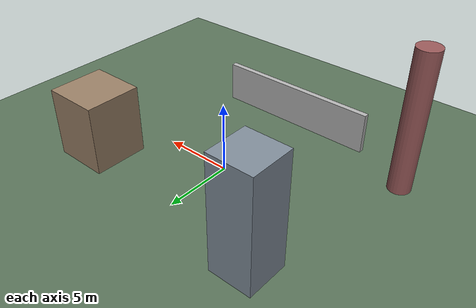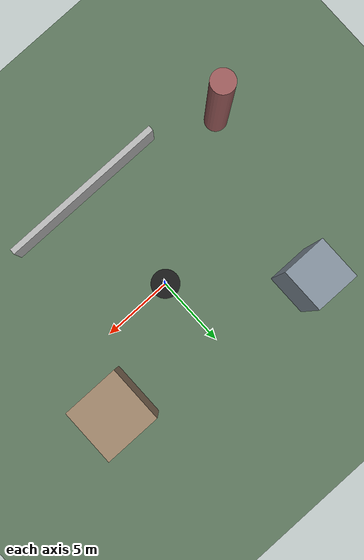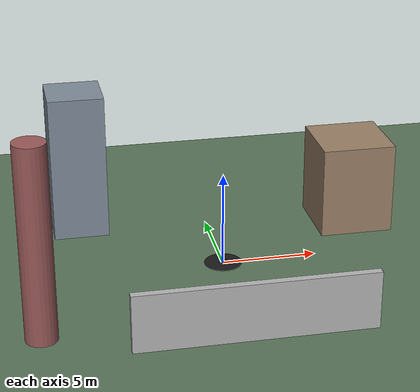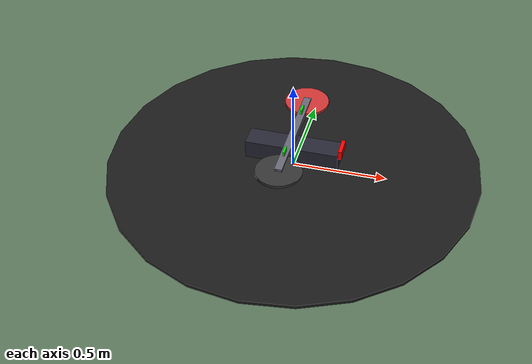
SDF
<?xml version="1.0" ?>
<sdf version="1.9">
  <world name="my_environment">

    <!-- ============ PHYSICS ============ -->
    <physics name="1ms" type="ignored">
      <max_step_size>0.001</max_step_size>
      <real_time_factor>1.0</real_time_factor>
    </physics>

    <!-- ============ WORLD ORIGIN (required for GPS / NavSat) ============ -->
    <!-- Lat/lon of the simulated world origin. Change to wherever you want the
         drone's takeoff point to be on Earth. -->
    <spherical_coordinates>
      <surface_model>EARTH_WGS84</surface_model>
      <world_frame_orientation>ENU</world_frame_orientation>
      <latitude_deg>47.397971</latitude_deg>
      <longitude_deg>8.546164</longitude_deg>
      <elevation>0</elevation>
      <heading_deg>0</heading_deg>
    </spherical_coordinates>

    <!-- ============ CORE SYSTEMS ============ -->
    <!-- These are listed explicitly so the world runs the same way regardless
         of your machine's default server config. -->
    <plugin filename="gz-sim-physics-system"
            name="gz::sim::systems::Physics"/>
    <plugin filename="gz-sim-user-commands-system"
            name="gz::sim::systems::UserCommands"/>
    <plugin filename="gz-sim-scene-broadcaster-system"
            name="gz::sim::systems::SceneBroadcaster"/>
    <plugin filename="gz-sim-sensors-system"
            name="gz::sim::systems::Sensors">
      <render_engine>ogre2</render_engine>
    </plugin>
    <plugin filename="gz-sim-imu-system"
            name="gz::sim::systems::Imu"/>
    <plugin filename="gz-sim-navsat-system"
            name="gz::sim::systems::NavSat"/>

    <!-- ============ SCENE / SKY ============ -->
    <scene>
      <ambient>0.4 0.4 0.4 1</ambient>
      <background>0.7 0.8 1.0 1</background>
      <sky></sky>
      <shadows>true</shadows>
    </scene>

    <light type="directional" name="sun">
      <cast_shadows>true</cast_shadows>
      <pose>0 0 10 0 0 0</pose>
      <diffuse>0.9 0.9 0.9 1</diffuse>
      <specular>0.3 0.3 0.3 1</specular>
      <attenuation>
        <range>1000</range>
        <constant>0.9</constant>
        <linear>0.01</linear>
        <quadratic>0.001</quadratic>
      </attenuation>
      <direction>-0.5 0.3 -0.9</direction>
    </light>

    <!-- ============ GROUND ============ -->
    <model name="ground_plane">
      <static>true</static>
      <link name="link">
        <collision name="collision">
          <geometry>
            <plane><normal>0 0 1</normal><size>200 200</size></plane>
          </geometry>
        </collision>
        <visual name="visual">
          <geometry>
            <plane><normal>0 0 1</normal><size>200 200</size></plane>
          </geometry>
          <material>
            <ambient>0.3 0.35 0.3 1</ambient>
            <diffuse>0.35 0.45 0.35 1</diffuse>
            <specular>0.1 0.1 0.1 1</specular>
          </material>
        </visual>
      </link>
    </model>

    <!-- ============ HELIPAD (takeoff marker under the drone) ============ -->
    <model name="helipad">
      <static>true</static>
      <pose>0 0 0.01 0 0 0</pose>
      <link name="link">
        <visual name="pad">
          <geometry><cylinder><radius>1.0</radius><length>0.02</length></cylinder></geometry>
          <material>
            <ambient>0.05 0.05 0.05 1</ambient>
            <diffuse>0.1 0.1 0.1 1</diffuse>
          </material>
        </visual>
        <collision name="pad_col">
          <geometry><cylinder><radius>1.0</radius><length>0.02</length></cylinder></geometry>
        </collision>
      </link>
    </model>

    <!-- ============ OBSTACLES ============ -->
    <!-- Two buildings, a wall and a tower. Copy/edit these blocks to design
         your own course. Everything is static so it won't move. -->
    <model name="building_a">
      <static>true</static>
      <pose>8 4 2.5 0 0 0</pose>
      <link name="link">
        <collision name="c"><geometry><box><size>4 4 5</size></box></geometry></collision>
        <visual name="v">
          <geometry><box><size>4 4 5</size></box></geometry>
          <material><ambient>0.5 0.4 0.35 1</ambient><diffuse>0.6 0.5 0.4 1</diffuse></material>
        </visual>
      </link>
    </model>

    <model name="building_b">
      <static>true</static>
      <pose>-7 6 4 0 0 0</pose>
      <link name="link">
        <collision name="c"><geometry><box><size>3 3 8</size></box></geometry></collision>
        <visual name="v">
          <geometry><box><size>3 3 8</size></box></geometry>
          <material><ambient>0.4 0.45 0.5 1</ambient><diffuse>0.5 0.55 0.6 1</diffuse></material>
        </visual>
      </link>
    </model>

    <model name="wall">
      <static>true</static>
      <pose>0 -8 1.5 0 0 0</pose>
      <link name="link">
        <collision name="c"><geometry><box><size>12 0.4 3</size></box></geometry></collision>
        <visual name="v">
          <geometry><box><size>12 0.4 3</size></box></geometry>
          <material><ambient>0.6 0.6 0.6 1</ambient><diffuse>0.7 0.7 0.7 1</diffuse></material>
        </visual>
      </link>
    </model>

    <model name="tower">
      <static>true</static>
      <pose>-10 -6 5 0 0 0</pose>
      <link name="link">
        <collision name="c"><geometry><cylinder><radius>0.8</radius><length>10</length></cylinder></geometry></collision>
        <visual name="v">
          <geometry><cylinder><radius>0.8</radius><length>10</length></cylinder></geometry>
          <material><ambient>0.5 0.3 0.3 1</ambient><diffuse>0.6 0.35 0.35 1</diffuse></material>
        </visual>
      </link>
    </model>

    <!-- ============ SPAWN THE DRONE ============ -->
    <!-- Found via GZ_SIM_RESOURCE_PATH (the models/ folder). Starts on the pad. -->
    <include>
      <uri>model://osprai</uri>
      <name>osprai</name>
      <pose>0 0 0.1 0 0 0</pose>
    </include>

  </world>
</sdf>

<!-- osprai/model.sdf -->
<sdf version="1.9">
  <model name="osprai">
    <pose>0 0 0 0 0 0</pose>

    <!-- ===================== FUSELAGE ===================== -->
    <link name="base_link">
      <inertial>
        <mass>1.0</mass>
        <inertia>
          <ixx>0.0020</ixx>
          <iyy>0.0217</iyy>
          <izz>0.0220</izz>
          <ixy>0</ixy>
          <ixz>0</ixz>
          <iyz>0</iyz>
        </inertia>
      </inertial>
      <visual name="body_visual">
        <geometry>
          <box>
            <size>0.50 0.12 0.10</size>
          </box>
        </geometry>
        <material>
          <ambient>0.1 0.1 0.12 1</ambient>
          <diffuse>0.15 0.15 0.2 1</diffuse>
        </material>
      </visual>
      <collision name="body_collision">
        <geometry><box><size>0.50 0.12 0.10</size></box></geometry>
      </collision>
      <!-- Spar drawn across the top so the geometry reads as an Osprey. -->
      <visual name="spar_visual">
        <pose>0 0 0.10 0 0 0</pose>
        <geometry>
          <box>
            <size>0.04 0.62 0.04</size>
          </box>
        </geometry>
        <material>
          <diffuse>0.4 0.4 0.45 1</diffuse>
        </material>
      </visual>
      <visual name="front_direction_marker">
        <pose>0.26 0 0.05 0 0 0</pose>
        <geometry>
          <box>
            <size>0.02 0.10 0.05</size>
          </box>
        </geometry>
        <material>
          <ambient>1 0 0 1</ambient>
          <diffuse>1 0 0 1</diffuse>
        </material>
      </visual>
      <sensor name="imu_sensor" type="imu">
        <always_on>1</always_on>
        <update_rate>250</update_rate>
        <topic>osprai/imu</topic>
        <imu>
          <orientation_reference_frame>
            <localization>CUSTOM</localization>
            <custom_rpy parent_frame="world">0 0 0</custom_rpy>
          </orientation_reference_frame>
        </imu>
      </sensor>
      <!-- ===== STEREO CAMERA PAIR (forward, baseline 0.12 m) ===== -->
      <!-- Both cameras are coplanar and parallel (face +X); the baseline is the
           Y separation (0.06 - (-0.06) = 0.12 m), which you'll need for the
           stereo disparity-to-depth math. -->
      <sensor name="camera_left" type="camera">
        <pose>0.26 0.06 0 0 0 0</pose>
        <always_on>1</always_on>
        <update_rate>30</update_rate>
        <topic>osprai/cameras/left</topic>
        <gz_frame_id>camera_left</gz_frame_id>
        <camera>
          <horizontal_fov>1.047</horizontal_fov>
          <image>
            <width>1280</width>
            <height>720</height>
          </image>
          <clip>
            <near>0.1</near>
            <far>300</far>
          </clip>
        </camera>
      </sensor>
      <sensor name="camera_right" type="camera">
        <pose>0.26 -0.06 0 0 0 0</pose>
        <always_on>1</always_on>
        <update_rate>30</update_rate>
        <topic>osprai/cameras/right</topic>
        <gz_frame_id>camera_right</gz_frame_id>
        <camera>
          <horizontal_fov>1.047</horizontal_fov>
          <image>
            <width>1280</width>
            <height>720</height>
          </image>
          <clip>
            <near>0.1</near>
            <far>300</far>
          </clip>
        </camera>
      </sensor>
      <!-- ===== 3D LIDAR (16-beam, 360 deg horizontal, mounted on top) ===== -->
      <sensor name="lidar" type="gpu_lidar">
        <pose>0 0 0.18 0 0 0</pose>
        <always_on>1</always_on>
        <update_rate>10</update_rate>
        <visualize>true</visualize>
        <topic>osprai/lidar</topic>
        <gz_frame_id>lidar</gz_frame_id>
        <lidar>
          <scan>
            <horizontal>
              <samples>360</samples>
              <resolution>1</resolution>
              <min_angle>-3.14159</min_angle>
              <max_angle>3.14159</max_angle>
            </horizontal>
            <vertical>
              <samples>16</samples>
              <resolution>1</resolution>
              <min_angle>-0.261799</min_angle>
              <max_angle>0.261799</max_angle>
            </vertical>
          </scan>
          <range>
            <min>0.2</min>
            <max>30.0</max>
            <resolution>0.01</resolution>
          </range>
          <noise>
            <type>gaussian</type>
            <mean>0.0</mean>
            <stddev>0.01</stddev>
          </noise>
        </lidar>
      </sensor>
      <sensor name="navsat" type="navsat">
        <always_on>1</always_on>
        <update_rate>5</update_rate>
        <topic>osprai/gps</topic>
        <gz_frame_id>navsat</gz_frame_id>
      </sensor>
    </link>

    <!-- ===================== LEFT ARM (+Y) ===================== -->
    <link name="arm_left">
      <pose>0 0.18 0.10 0 0 0</pose>
      <inertial>
        <mass>0.05</mass>
        <inertia>
          <ixx>0.0004</ixx>
          <iyy>0.00005</iyy>
          <izz>0.0004</izz>
          <ixy>0</ixy>
          <ixz>0</ixz>
          <iyz>0</iyz>
        </inertia>
      </inertial>
      <visual name="arm_left_visual">
        <geometry>
          <box>
            <size>0.03 0.26 0.03</size>
          </box>
        </geometry>
        <material>
          <diffuse>0.5 0.5 0.55 1</diffuse>
        </material>
      </visual>
      <visual name="arm_left_up_marker">
        <pose>0 0 0.025 0 0 0</pose>
        <geometry>
          <box>
            <size>0.01 0.05 0.04</size>
          </box>
        </geometry>
        <material>
          <ambient>0 1 0 1</ambient>
          <diffuse>0 1 0 1</diffuse>
        </material>
      </visual>
    </link>

    <!-- Tilt joint: rotates the whole arm about Y. Driven to a target angle. -->
    <joint name="tilt_left" type="revolute">
      <parent>base_link</parent>
      <child>arm_left</child>
      <axis>
        <xyz>0 1 0</xyz>
        <limit>
          <lower>-1.57</lower>
          <upper>1.57</upper>
          <velocity>10.0</velocity>
          <effort>1.0</effort>
        </limit>
        <dynamics>
          <damping>0.02</damping>
        </dynamics>
      </axis>
    </joint>

    <link name="rotor_left">
      <pose>0 0.30 0.10 0 0 0</pose>
      <inertial>
        <mass>0.05</mass>
        <inertia>
          <ixx>0.00018</ixx>
          <iyy>0.00018</iyy>
          <izz>0.00036</izz>
          <ixy>0</ixy>
          <ixz>0</ixz>
          <iyz>0</iyz>
        </inertia>
      </inertial>
      <visual name="rotor_left_visual">
        <geometry>
          <cylinder>
            <radius>0.12</radius>
            <length>0.015</length>
            </cylinder>
          </geometry>
        <material>
          <diffuse>0.8 0.2 0.2 1</diffuse>
        </material>
      </visual>
    </link>

    <!-- Spin joint: rotor spins about its local Z; tilts with the arm. -->
    <joint name="spin_left" type="revolute">
      <parent>arm_left</parent>
      <child>rotor_left</child>
      <axis>
        <xyz>0 0 1</xyz>
        <limit>
          <lower>-1e16</lower>
          <upper>1e16</upper>
        </limit>
      </axis>
    </joint>

    <!-- ===================== RIGHT ARM (-Y) ===================== -->
    <link name="arm_right">
      <pose>0 -0.18 0.10 0 0 0</pose>
      <inertial>
        <mass>0.05</mass>
        <inertia>
          <ixx>0.0004</ixx>
          <iyy>0.00005</iyy>
          <izz>0.0004</izz>
          <ixy>0</ixy>
          <ixz>0</ixz>
          <iyz>0</iyz>
        </inertia>
      </inertial>
      <visual name="arm_right_visual">
        <geometry>
          <box>
            <size>0.03 0.26 0.03</size>
          </box>
        </geometry>
        <material>
          <diffuse>0.5 0.5 0.55 1</diffuse>
        </material>
      </visual>
      <visual name="arm_right_up_marker">
        <pose>0 0 0.025 0 0 0</pose>
        <geometry>
          <box>
            <size>0.01 0.05 0.04</size>
          </box>
        </geometry>
        <material>
          <ambient>0 1 0 1</ambient>
          <diffuse>0 1 0 1</diffuse>
        </material>
      </visual>
    </link>
    <joint name="tilt_right" type="revolute">
      <parent>base_link</parent>
      <child>arm_right</child>
      <axis>
        <xyz>0 1 0</xyz>
        <limit>
          <lower>-1.57</lower>
          <upper>1.57</upper>
          <velocity>10.0</velocity>
          <effort>1.0</effort>
        </limit>
        <dynamics>
          <damping>0.02</damping>
        </dynamics>
      </axis>
    </joint>

    <link name="rotor_right">
      <pose>0 -0.30 0.10 0 0 0</pose>
      <inertial>
        <mass>0.05</mass>
        <inertia>
          <ixx>0.00018</ixx>
          <iyy>0.00018</iyy>
          <izz>0.00036</izz>
          <ixy>0</ixy>
          <ixz>0</ixz>
          <iyz>0</iyz>
        </inertia>
      </inertial>
      <visual name="rotor_right_visual">
        <geometry>
          <cylinder>
            <radius>0.12</radius>
            <length>0.015</length>
          </cylinder>
        </geometry>
        <material>
          <diffuse>0.2 0.2 0.2 1</diffuse>
        </material>
      </visual>
    </link>
    <joint name="spin_right" type="revolute">
      <parent>arm_right</parent>
      <child>rotor_right</child>
      <axis>
        <xyz>0 0 1</xyz>
        <limit>
          <lower>-1e16</lower>
          <upper>1e16</upper>
        </limit>
      </axis>
    </joint>

    <!-- ===================== ROTOR THRUST ===================== -->
    <plugin filename="gz-sim-multicopter-motor-model-system"
            name="gz::sim::systems::MulticopterMotorModel">
      <robotNamespace>osprai</robotNamespace>
      <jointName>spin_left</jointName>
      <linkName>rotor_left</linkName>
      <turningDirection>ccw</turningDirection>
      <timeConstantUp>0.0125</timeConstantUp>
      <timeConstantDown>0.025</timeConstantDown>
      <maxRotVelocity>1200.0</maxRotVelocity>
      <motorConstant>1.2e-05</motorConstant>
      <momentConstant>0.016</momentConstant>
      <commandSubTopic>command/motor_setpoints</commandSubTopic>
      <actuator_number>0</actuator_number>
      <rotorDragCoefficient>8.06428e-05</rotorDragCoefficient>
      <rollingMomentCoefficient>1e-06</rollingMomentCoefficient>
      <rotorVelocitySlowdownSim>1</rotorVelocitySlowdownSim>
      <motorType>velocity</motorType>
    </plugin>

    <plugin filename="gz-sim-multicopter-motor-model-system"
            name="gz::sim::systems::MulticopterMotorModel">
      <robotNamespace>osprai</robotNamespace>
      <jointName>spin_right</jointName>
      <linkName>rotor_right</linkName>
      <turningDirection>cw</turningDirection>
      <timeConstantUp>0.0125</timeConstantUp>
      <timeConstantDown>0.025</timeConstantDown>
      <maxRotVelocity>1200.0</maxRotVelocity>
      <motorConstant>1.2e-05</motorConstant>
      <momentConstant>0.016</momentConstant>
      <commandSubTopic>command/motor_setpoints</commandSubTopic>
      <actuator_number>1</actuator_number>
      <rotorDragCoefficient>8.06428e-05</rotorDragCoefficient>
      <rollingMomentCoefficient>1e-06</rollingMomentCoefficient>
      <rotorVelocitySlowdownSim>1</rotorVelocitySlowdownSim>
      <motorType>velocity</motorType>
    </plugin>

    <!-- ===================== TILT ACTUATORS ===================== -->
    <plugin filename="gz-sim-joint-position-controller-system"
            name="gz::sim::systems::JointPositionController">
      <joint_name>tilt_left</joint_name>
      <use_actuator_msg>true</use_actuator_msg>
      <actuator_number>0</actuator_number>
      <topic>/osprai/command/motor_setpoints</topic>
      <p_gain>20.0</p_gain>
      <i_gain>0.0</i_gain>
      <d_gain>0.13</d_gain>
      <cmd_max>0.8</cmd_max>
      <cmd_min>-0.8</cmd_min>
    </plugin>

    <plugin filename="gz-sim-joint-position-controller-system"
            name="gz::sim::systems::JointPositionController">
      <joint_name>tilt_right</joint_name>
      <use_actuator_msg>true</use_actuator_msg>
      <actuator_number>1</actuator_number>
      <topic>/osprai/command/motor_setpoints</topic>
      <p_gain>20.0</p_gain>
      <i_gain>0.0</i_gain>
      <d_gain>0.13</d_gain>
      <cmd_max>0.8</cmd_max>
      <cmd_min>-0.8</cmd_min>
    </plugin>

    <plugin filename="gz-sim-odometry-publisher-system"
            name="gz::sim::systems::OdometryPublisher">
      <odom_frame>world</odom_frame>
      <robot_base_frame>osprai</robot_base_frame>
      <dimensions>3</dimensions>
    </plugin>

    <plugin filename="gz-sim-joint-state-publisher-system"
            name="gz::sim::systems::JointStatePublisher">
      <topic>/osprai/joint_state</topic>
      <joint_name>tilt_left</joint_name>
      <joint_name>tilt_right</joint_name>
      <joint_name>spin_left</joint_name>
      <joint_name>spin_right</joint_name>
    </plugin>

  </model>
</sdf>
